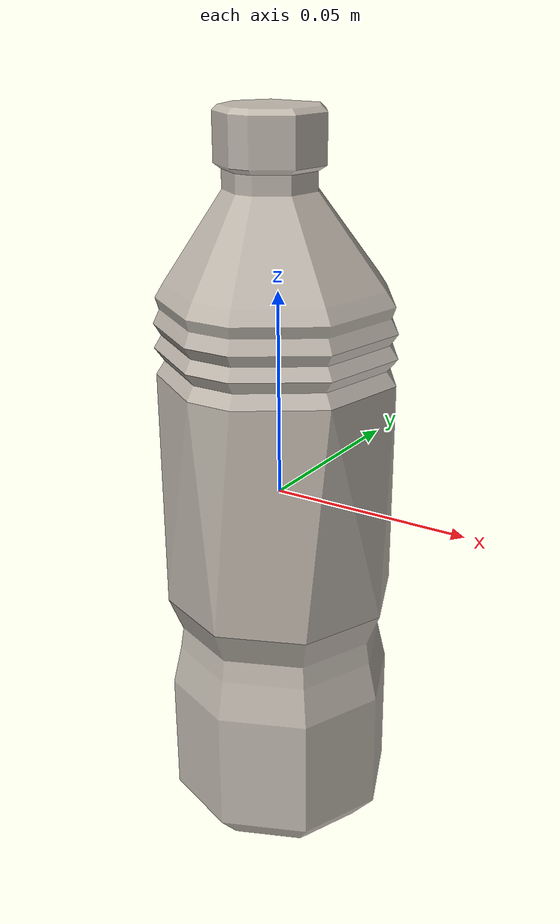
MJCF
<?xml version='1.0' encoding='utf-8'?>
<mujoco model="bottled_water_8">
  <asset>
    <mesh file="visual/model_normalized_0.obj" name="model_normalized_0_vis" scale="0.181818 0.181818 0.181818" refquat="1.0 0.0 0.0 0.0" />
    <mesh file="visual/model_normalized_1.obj" name="model_normalized_1_vis" scale="0.181818 0.181818 0.181818" refquat="1.0 0.0 0.0 0.0" />
    <mesh file="visual/model_normalized_2.obj" name="model_normalized_2_vis" scale="0.181818 0.181818 0.181818" refquat="1.0 0.0 0.0 0.0" />
    <texture type="2d" name="image0" file="visual/image0.png" />
    <material name="Bottle.002" texture="image0" specular="0.5" shininess="0.25" />
    <material name="Brand" texture="image0" specular="0.5" shininess="0.25" />
    <material name="Cover" texture="image0" specular="0.5" shininess="0.25" />
    <mesh file="collision/collision_mesh_collision_0.obj" name="bottled_collision_mesh_0" scale="0.181818 0.181818 0.181818" refquat="1.0 0.0 0.0 0.0" />
    <mesh file="collision/collision_mesh_collision_1.obj" name="bottled_collision_mesh_1" scale="0.181818 0.181818 0.181818" refquat="1.0 0.0 0.0 0.0" />
    <mesh file="collision/collision_mesh_collision_2.obj" name="bottled_collision_mesh_2" scale="0.181818 0.181818 0.181818" refquat="1.0 0.0 0.0 0.0" />
    <mesh file="collision/collision_mesh_collision_3.obj" name="bottled_collision_mesh_3" scale="0.181818 0.181818 0.181818" refquat="1.0 0.0 0.0 0.0" />
    </asset>
  <default>
    <default class="region">
      <geom group="1" conaffinity="0" contype="0" rgba="0 1 0 0" />
      </default>
    <default class="collision">
      <geom group="3" rgba="0.5 0 0 0.5" density="1000.0" />
      </default>
    </default>
  <worldbody>
    <body>
      <body name="object">
        <geom density="100" friction="0.95 0.3 0.1" type="mesh" mesh="model_normalized_0_vis" conaffinity="0" contype="0" group="1" material="Brand" />
        <geom density="100" friction="0.95 0.3 0.1" type="mesh" mesh="model_normalized_1_vis" conaffinity="0" contype="0" group="1" material="Bottle.002" />
        <geom density="100" friction="0.95 0.3 0.1" type="mesh" mesh="model_normalized_2_vis" conaffinity="0" contype="0" group="1" material="Cover" />
        <geom class="region" name="reg_bbox" type="box" pos="2.1185249999998433e-05 -0.00019654574999999964 -0.0004930237500000018" size="0.022936572 0.022604849999999996 0.07450697625" />
        <geom mesh="bottled_collision_mesh_0" type="mesh" class="collision"  solref="0.004 1" solimp="0.998 0.998 0.001"/>
        <geom mesh="bottled_collision_mesh_1" type="mesh" class="collision"  solref="0.004 1" solimp="0.998 0.998 0.001"/>
        <geom mesh="bottled_collision_mesh_2" type="mesh" class="collision"  solref="0.004 1" solimp="0.998 0.998 0.001"/>
        <geom mesh="bottled_collision_mesh_3" type="mesh" class="collision"  solref="0.004 1" solimp="0.998 0.998 0.001"/>
        </body>
      </body>
    </worldbody>
  </mujoco>
